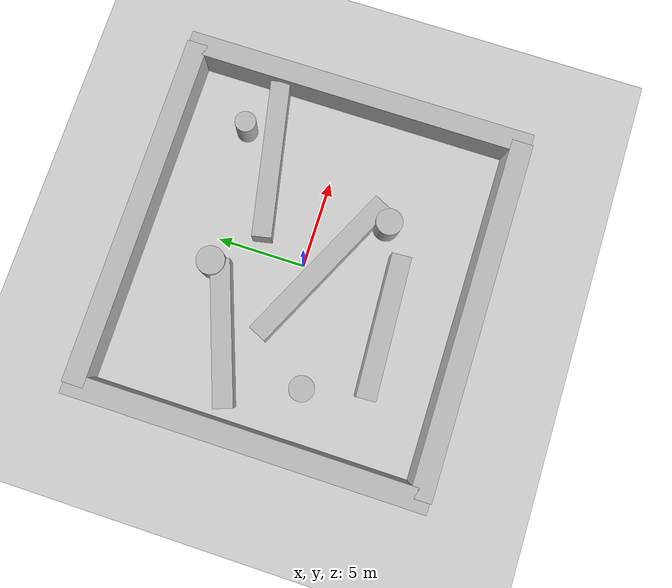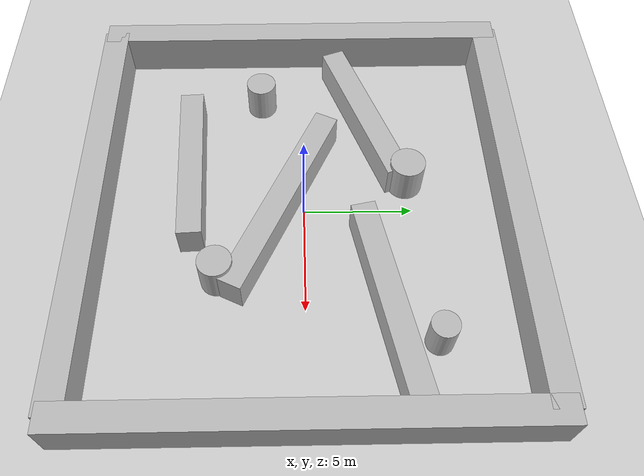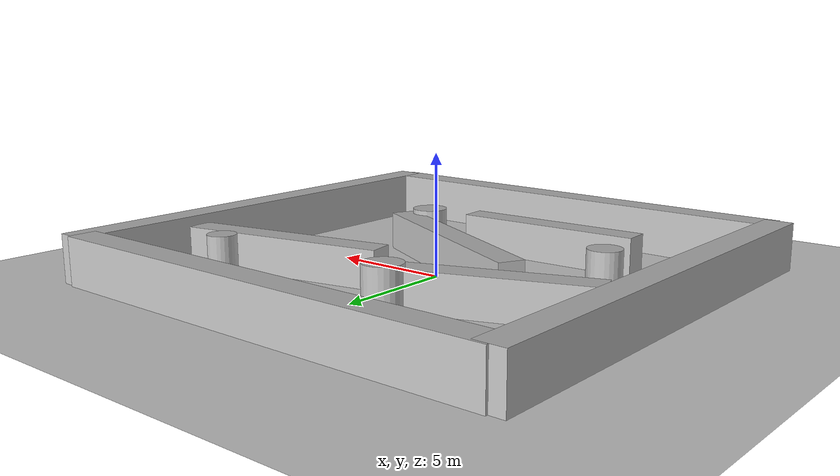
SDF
<?xml version="1.0" ?>
<sdf version="1.6">
  <world name="canyon_caves">
    <include><uri>model://ground_plane</uri></include>
    <include><uri>model://sun</uri></include>

    <model name="canyon_ridges">
      <static>true</static>
      <link name="ridges">
        <collision name="r1"><pose>-10 0 1.0 0 0 0</pose><geometry><box><size>1.2 20 2.0</size></box></geometry></collision>
        <collision name="r2"><pose>10 0 1.0 0 0 0</pose><geometry><box><size>1.2 20 2.0</size></box></geometry></collision>
        <collision name="r3"><pose>0 9.5 1.0 0 0 0</pose><geometry><box><size>20 1.2 2.0</size></box></geometry></collision>
        <collision name="r4"><pose>0 -9.5 1.0 0 0 0</pose><geometry><box><size>20 1.2 2.0</size></box></geometry></collision>

        <collision name="path1"><pose>-5 3 0.8 0 0 0.35</pose><geometry><box><size>8 1.1 1.6</size></box></geometry></collision>
        <collision name="path2"><pose>0 -1 0.8 0 0 -0.45</pose><geometry><box><size>10 1.1 1.6</size></box></geometry></collision>
        <collision name="path3"><pose>5 3.5 0.8 0 0 0.2</pose><geometry><box><size>9 1.1 1.6</size></box></geometry></collision>
        <collision name="path4"><pose>-2 -5.2 0.8 0 0 0.05</pose><geometry><box><size>8 1.1 1.6</size></box></geometry></collision>

        <visual name="r1v"><pose>-10 0 1.0 0 0 0</pose><geometry><box><size>1.2 20 2.0</size></box></geometry></visual>
        <visual name="r2v"><pose>10 0 1.0 0 0 0</pose><geometry><box><size>1.2 20 2.0</size></box></geometry></visual>
        <visual name="r3v"><pose>0 9.5 1.0 0 0 0</pose><geometry><box><size>20 1.2 2.0</size></box></geometry></visual>
        <visual name="r4v"><pose>0 -9.5 1.0 0 0 0</pose><geometry><box><size>20 1.2 2.0</size></box></geometry></visual>
        <visual name="path1v"><pose>-5 3 0.8 0 0 0.35</pose><geometry><box><size>8 1.1 1.6</size></box></geometry></visual>
        <visual name="path2v"><pose>0 -1 0.8 0 0 -0.45</pose><geometry><box><size>10 1.1 1.6</size></box></geometry></visual>
        <visual name="path3v"><pose>5 3.5 0.8 0 0 0.2</pose><geometry><box><size>9 1.1 1.6</size></box></geometry></visual>
        <visual name="path4v"><pose>-2 -5.2 0.8 0 0 0.05</pose><geometry><box><size>8 1.1 1.6</size></box></geometry></visual>
      </link>
    </model>

    <model name="cave_columns">
      <static>true</static>
      <link name="columns">
        <collision name="c1"><pose>-6.5 -2.0 0.9 0 0 0</pose><geometry><cylinder><radius>0.7</radius><length>1.8</length></cylinder></geometry></collision>
        <collision name="c2"><pose>-1.5 4.8 0.9 0 0 0</pose><geometry><cylinder><radius>0.8</radius><length>1.8</length></cylinder></geometry></collision>
        <collision name="c3"><pose>3.5 -3.8 0.9 0 0 0</pose><geometry><cylinder><radius>0.75</radius><length>1.8</length></cylinder></geometry></collision>
        <collision name="c4"><pose>6.5 5.5 0.9 0 0 0</pose><geometry><cylinder><radius>0.6</radius><length>1.8</length></cylinder></geometry></collision>
        <visual name="c1v"><pose>-6.5 -2.0 0.9 0 0 0</pose><geometry><cylinder><radius>0.7</radius><length>1.8</length></cylinder></geometry></visual>
        <visual name="c2v"><pose>-1.5 4.8 0.9 0 0 0</pose><geometry><cylinder><radius>0.8</radius><length>1.8</length></cylinder></geometry></visual>
        <visual name="c3v"><pose>3.5 -3.8 0.9 0 0 0</pose><geometry><cylinder><radius>0.75</radius><length>1.8</length></cylinder></geometry></visual>
        <visual name="c4v"><pose>6.5 5.5 0.9 0 0 0</pose><geometry><cylinder><radius>0.6</radius><length>1.8</length></cylinder></geometry></visual>
      </link>
    </model>
  </world>
</sdf>
